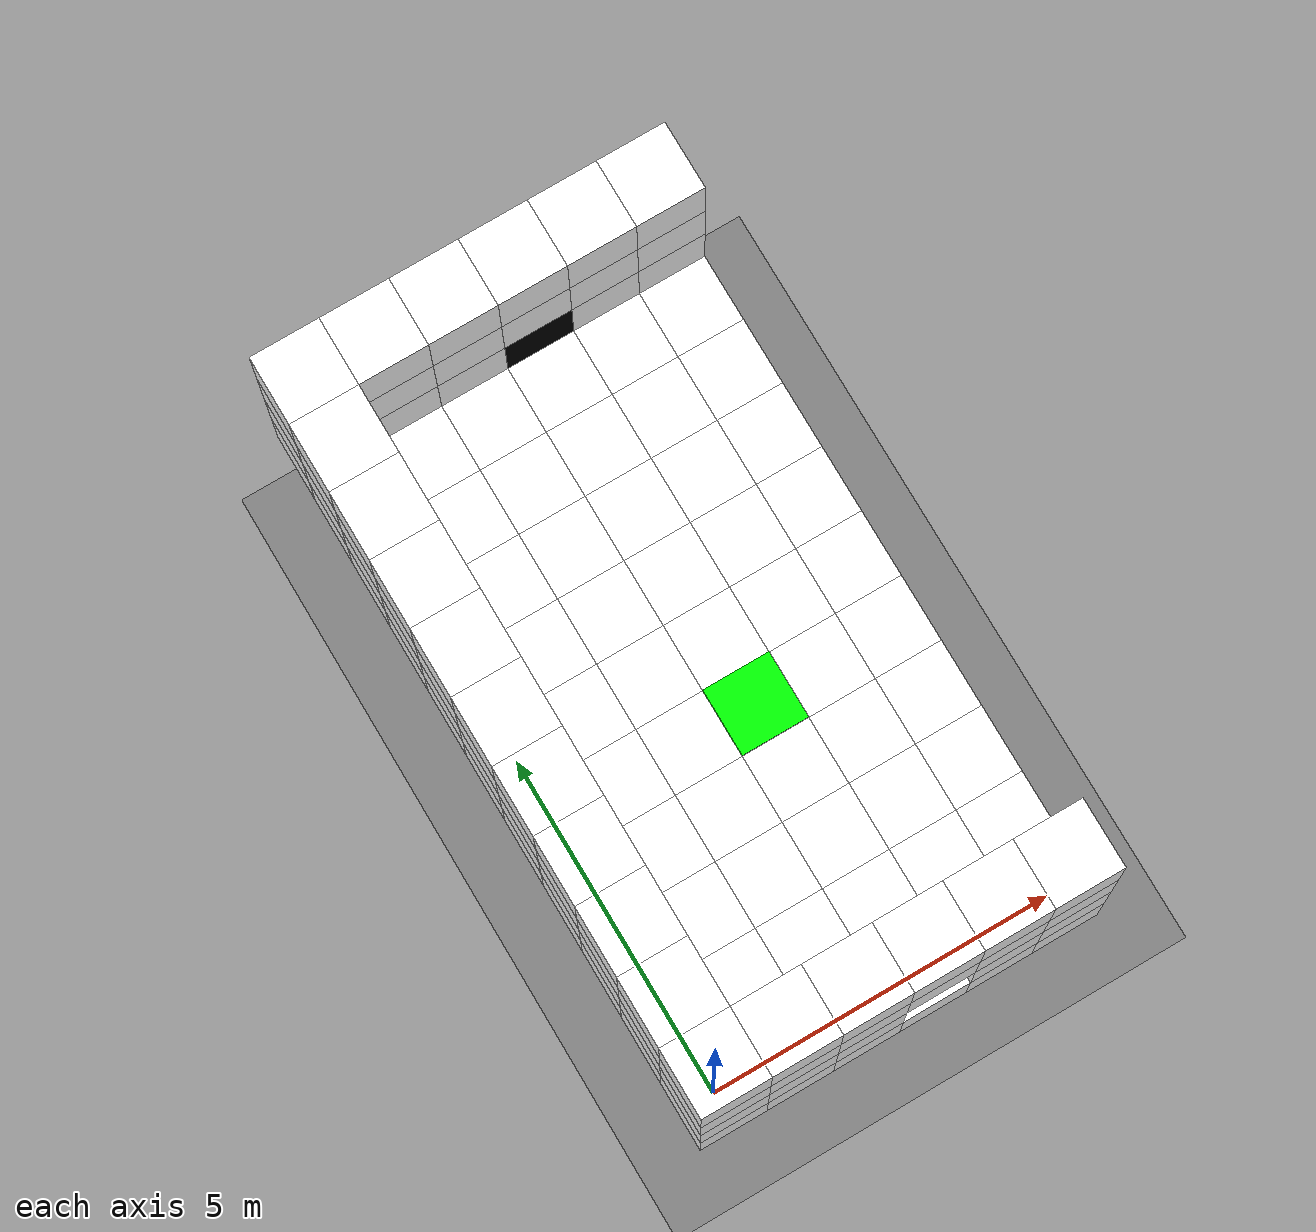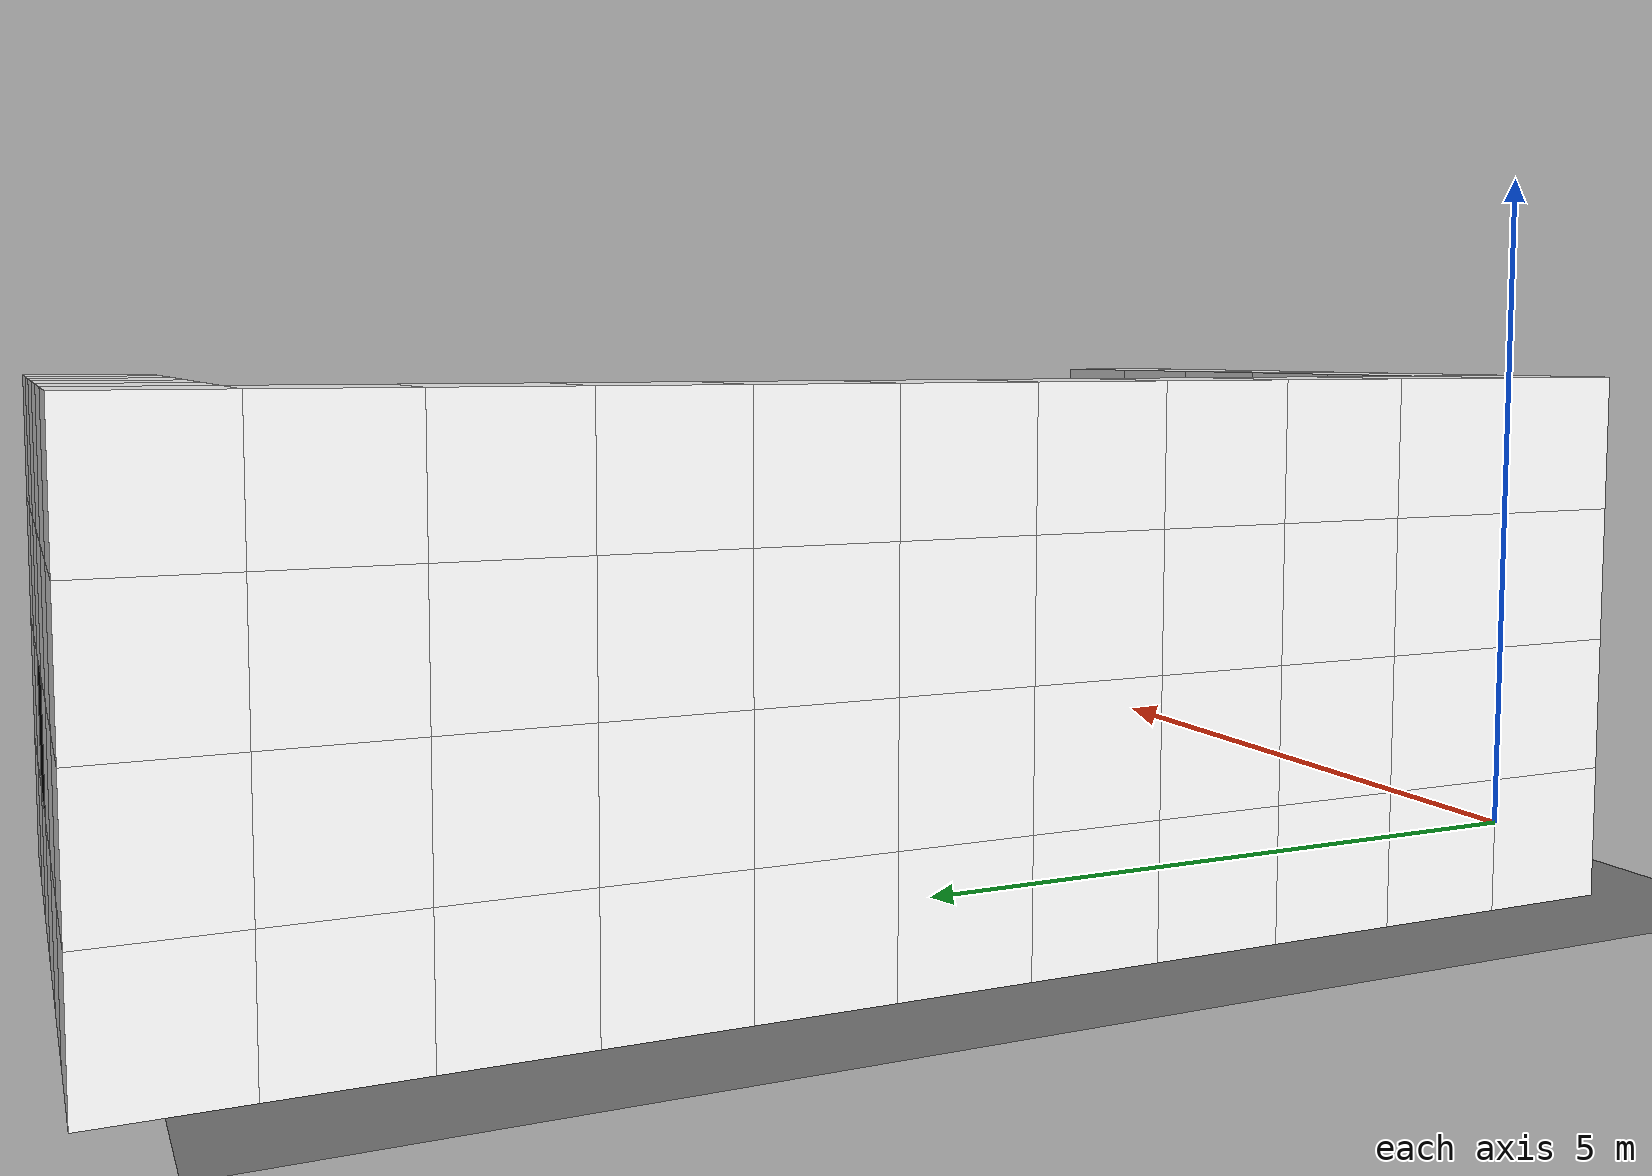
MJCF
<mujoco model="plane_field"><compiler angle="radian" coordinate="local" /><option gravity="0 0 0 " /><worldbody><geom type="plane" name="field" size="10 10 0.01" pos="0 0 -0.5" /><body name="room" pos="0 0 0"><body pos=" 3.0 4.0 0.52" euler=" 0.0 -0.0 0.0"><geom type="box" size=".5 .5 .02" pos="0 0 0" rgba="0 1 0 1" /></body><body pos=" 0.0 0.0 0.0" euler=" 0.0 -0.0 0.0"><geom type="box" size=".5 .5 .5" pos="0 0 0" rgba="1 1 1 1" /></body><body pos=" 0.0 1.0 0.0" euler=" 0.0 -0.0 0.0"><geom type="box" size=".5 .5 .5" pos="0 0 0" rgba="1 1 1 1" /></body><body pos=" 0.0 2.0 0.0" euler=" 0.0 -0.0 0.0"><geom type="box" size=".5 .5 .5" pos="0 0 0" rgba="1 1 1 1" /></body><body pos=" 0.0 3.0 0.0" euler=" 0.0 -0.0 0.0"><geom type="box" size=".5 .5 .5" pos="0 0 0" rgba="1 1 1 1" /></body><body pos=" 0.0 4.0 0.0" euler=" 0.0 -0.0 0.0"><geom type="box" size=".5 .5 .5" pos="0 0 0" rgba="1 1 1 1" /></body><body pos=" 0.0 5.0 0.0" euler=" 0.0 -0.0 0.0"><geom type="box" size=".5 .5 .5" pos="0 0 0" rgba="1 1 1 1" /></body><body pos=" 0.0 6.0 0.0" euler=" 0.0 -0.0 0.0"><geom type="box" size=".5 .5 .5" pos="0 0 0" rgba="1 1 1 1" /></body><body pos=" 0.0 7.0 0.0" euler=" 0.0 -0.0 0.0"><geom type="box" size=".5 .5 .5" pos="0 0 0" rgba="1 1 1 1" /></body><body pos=" 0.0 8.0 0.0" euler=" 0.0 -0.0 0.0"><geom type="box" size=".5 .5 .5" pos="0 0 0" rgba="1 1 1 1" /></body><body pos=" 0.0 9.0 0.0" euler=" 0.0 -0.0 0.0"><geom type="box" size=".5 .5 .5" pos="0 0 0" rgba="1 1 1 1" /></body><body pos=" 0.0 10.0 0.0" euler=" 0.0 -0.0 0.0"><geom type="box" size=".5 .5 .5" pos="0 0 0" rgba="1 1 1 1" /></body><body pos=" 1.0 0.0 0.0" euler=" 0.0 -0.0 0.0"><geom type="box" size=".5 .5 .5" pos="0 0 0" rgba="1 1 1 1" /></body><body pos=" 1.0 1.0 0.0" euler=" 0.0 -0.0 0.0"><geom type="box" size=".5 .5 .5" pos="0 0 0" rgba="1 1 1 1" /></body><body pos=" 1.0 2.0 0.0" euler=" 0.0 -0.0 0.0"><geom type="box" size=".5 .5 .5" pos="0 0 0" rgba="1 1 1 1" /></body><body pos=" 1.0 3.0 0.0" euler=" 0.0 -0.0 0.0"><geom type="box" size=".5 .5 .5" pos="0 0 0" rgba="1 1 1 1" /></body><body pos=" 1.0 4.0 0.0" euler=" 0.0 -0.0 0.0"><geom type="box" size=".5 .5 .5" pos="0 0 0" rgba="1 1 1 1" /></body><body pos=" 1.0 5.0 0.0" euler=" 0.0 -0.0 0.0"><geom type="box" size=".5 .5 .5" pos="0 0 0" rgba="1 1 1 1" /></body><body pos=" 1.0 6.0 0.0" euler=" 0.0 -0.0 0.0"><geom type="box" size=".5 .5 .5" pos="0 0 0" rgba="1 1 1 1" /></body><body pos=" 1.0 7.0 0.0" euler=" 0.0 -0.0 0.0"><geom type="box" size=".5 .5 .5" pos="0 0 0" rgba="1 1 1 1" /></body><body pos=" 1.0 8.0 0.0" euler=" 0.0 -0.0 0.0"><geom type="box" size=".5 .5 .5" pos="0 0 0" rgba="1 1 1 1" /></body><body pos=" 1.0 9.0 0.0" euler=" 0.0 -0.0 0.0"><geom type="box" size=".5 .5 .5" pos="0 0 0" rgba="1 1 1 1" /></body><body pos=" 1.0 10.0 0.0" euler=" 0.0 -0.0 0.0"><geom type="box" size=".5 .5 .5" pos="0 0 0" rgba="1 1 1 1" /></body><body pos=" 2.0 0.0 0.0" euler=" 0.0 -0.0 0.0"><geom type="box" size=".5 .5 .5" pos="0 0 0" rgba="1 1 1 1" /></body><body pos=" 2.0 1.0 0.0" euler=" 0.0 -0.0 0.0"><geom type="box" size=".5 .5 .5" pos="0 0 0" rgba="1 1 1 1" /></body><body pos=" 2.0 2.0 0.0" euler=" 0.0 -0.0 0.0"><geom type="box" size=".5 .5 .5" pos="0 0 0" rgba="1 1 1 1" /></body><body pos=" 2.0 3.0 0.0" euler=" 0.0 -0.0 0.0"><geom type="box" size=".5 .5 .5" pos="0 0 0" rgba="1 1 1 1" /></body><body pos=" 2.0 4.0 0.0" euler=" 0.0 -0.0 0.0"><geom type="box" size=".5 .5 .5" pos="0 0 0" rgba="1 1 1 1" /></body><body pos=" 2.0 5.0 0.0" euler=" 0.0 -0.0 0.0"><geom type="box" size=".5 .5 .5" pos="0 0 0" rgba="1 1 1 1" /></body><body pos=" 2.0 6.0 0.0" euler=" 0.0 -0.0 0.0"><geom type="box" size=".5 .5 .5" pos="0 0 0" rgba="1 1 1 1" /></body><body pos=" 2.0 7.0 0.0" euler=" 0.0 -0.0 0.0"><geom type="box" size=".5 .5 .5" pos="0 0 0" rgba="1 1 1 1" /></body><body pos=" 2.0 8.0 0.0" euler=" 0.0 -0.0 0.0"><geom type="box" size=".5 .5 .5" pos="0 0 0" rgba="1 1 1 1" /></body><body pos=" 2.0 9.0 0.0" euler=" 0.0 -0.0 0.0"><geom type="box" size=".5 .5 .5" pos="0 0 0" rgba="1 1 1 1" /></body><body pos=" 2.0 10.0 0.0" euler=" 0.0 -0.0 0.0"><geom type="box" size=".5 .5 .5" pos="0 0 0" rgba="1 1 1 1" /></body><body pos=" 3.0 0.0 0.0" euler=" 0.0 -0.0 0.0"><geom type="box" size=".5 .5 .5" pos="0 0 0" rgba="1 1 1 1" /></body><body pos=" 3.0 1.0 0.0" euler=" 0.0 -0.0 0.0"><geom type="box" size=".5 .5 .5" pos="0 0 0" rgba="1 1 1 1" /></body><body pos=" 3.0 2.0 0.0" euler=" 0.0 -0.0 0.0"><geom type="box" size=".5 .5 .5" pos="0 0 0" rgba="1 1 1 1" /></body><body pos=" 3.0 3.0 0.0" euler=" 0.0 -0.0 0.0"><geom type="box" size=".5 .5 .5" pos="0 0 0" rgba="1 1 1 1" /></body><body pos=" 3.0 4.0 0.0" euler=" 0.0 -0.0 0.0"><geom type="box" size=".5 .5 .5" pos="0 0 0" rgba="1 1 1 1" /></body><body pos=" 3.0 5.0 0.0" euler=" 0.0 -0.0 0.0"><geom type="box" size=".5 .5 .5" pos="0 0 0" rgba="1 1 1 1" /></body><body pos=" 3.0 6.0 0.0" euler=" 0.0 -0.0 0.0"><geom type="box" size=".5 .5 .5" pos="0 0 0" rgba="1 1 1 1" /></body><body pos=" 3.0 7.0 0.0" euler=" 0.0 -0.0 0.0"><geom type="box" size=".5 .5 .5" pos="0 0 0" rgba="1 1 1 1" /></body><body pos=" 3.0 8.0 0.0" euler=" 0.0 -0.0 0.0"><geom type="box" size=".5 .5 .5" pos="0 0 0" rgba="1 1 1 1" /></body><body pos=" 3.0 9.0 0.0" euler=" 0.0 -0.0 0.0"><geom type="box" size=".5 .5 .5" pos="0 0 0" rgba="1 1 1 1" /></body><body pos=" 3.0 10.0 0.0" euler=" 0.0 -0.0 0.0"><geom type="box" size=".5 .5 .5" pos="0 0 0" rgba="1 1 1 1" /></body><body pos=" 4.0 0.0 0.0" euler=" 0.0 -0.0 0.0"><geom type="box" size=".5 .5 .5" pos="0 0 0" rgba="1 1 1 1" /></body><body pos=" 4.0 1.0 0.0" euler=" 0.0 -0.0 0.0"><geom type="box" size=".5 .5 .5" pos="0 0 0" rgba="1 1 1 1" /></body><body pos=" 4.0 2.0 0.0" euler=" 0.0 -0.0 0.0"><geom type="box" size=".5 .5 .5" pos="0 0 0" rgba="1 1 1 1" /></body><body pos=" 4.0 3.0 0.0" euler=" 0.0 -0.0 0.0"><geom type="box" size=".5 .5 .5" pos="0 0 0" rgba="1 1 1 1" /></body><body pos=" 4.0 4.0 0.0" euler=" 0.0 -0.0 0.0"><geom type="box" size=".5 .5 .5" pos="0 0 0" rgba="1 1 1 1" /></body><body pos=" 4.0 5.0 0.0" euler=" 0.0 -0.0 0.0"><geom type="box" size=".5 .5 .5" pos="0 0 0" rgba="1 1 1 1" /></body><body pos=" 4.0 6.0 0.0" euler=" 0.0 -0.0 0.0"><geom type="box" size=".5 .5 .5" pos="0 0 0" rgba="1 1 1 1" /></body><body pos=" 4.0 7.0 0.0" euler=" 0.0 -0.0 0.0"><geom type="box" size=".5 .5 .5" pos="0 0 0" rgba="1 1 1 1" /></body><body pos=" 4.0 8.0 0.0" euler=" 0.0 -0.0 0.0"><geom type="box" size=".5 .5 .5" pos="0 0 0" rgba="1 1 1 1" /></body><body pos=" 4.0 9.0 0.0" euler=" 0.0 -0.0 0.0"><geom type="box" size=".5 .5 .5" pos="0 0 0" rgba="1 1 1 1" /></body><body pos=" 4.0 10.0 0.0" euler=" 0.0 -0.0 0.0"><geom type="box" size=".5 .5 .5" pos="0 0 0" rgba="1 1 1 1" /></body><body pos=" 5.0 0.0 0.0" euler=" 0.0 -0.0 0.0"><geom type="box" size=".5 .5 .5" pos="0 0 0" rgba="1 1 1 1" /></body><body pos=" 5.0 1.0 0.0" euler=" 0.0 -0.0 0.0"><geom type="box" size=".5 .5 .5" pos="0 0 0" rgba="1 1 1 1" /></body><body pos=" 5.0 2.0 0.0" euler=" 0.0 -0.0 0.0"><geom type="box" size=".5 .5 .5" pos="0 0 0" rgba="1 1 1 1" /></body><body pos=" 5.0 3.0 0.0" euler=" 0.0 -0.0 0.0"><geom type="box" size=".5 .5 .5" pos="0 0 0" rgba="1 1 1 1" /></body><body pos=" 5.0 4.0 0.0" euler=" 0.0 -0.0 0.0"><geom type="box" size=".5 .5 .5" pos="0 0 0" rgba="1 1 1 1" /></body><body pos=" 5.0 5.0 0.0" euler=" 0.0 -0.0 0.0"><geom type="box" size=".5 .5 .5" pos="0 0 0" rgba="1 1 1 1" /></body><body pos=" 5.0 6.0 0.0" euler=" 0.0 -0.0 0.0"><geom type="box" size=".5 .5 .5" pos="0 0 0" rgba="1 1 1 1" /></body><body pos=" 5.0 7.0 0.0" euler=" 0.0 -0.0 0.0"><geom type="box" size=".5 .5 .5" pos="0 0 0" rgba="1 1 1 1" /></body><body pos=" 5.0 8.0 0.0" euler=" 0.0 -0.0 0.0"><geom type="box" size=".5 .5 .5" pos="0 0 0" rgba="1 1 1 1" /></body><body pos=" 5.0 9.0 0.0" euler=" 0.0 -0.0 0.0"><geom type="box" size=".5 .5 .5" pos="0 0 0" rgba="1 1 1 1" /></body><body pos=" 5.0 10.0 0.0" euler=" 0.0 -0.0 0.0"><geom type="box" size=".5 .5 .5" pos="0 0 0" rgba="1 1 1 1" /></body><body pos=" 0.0 0.0 1.0" euler=" 0.0 -0.0 0.0"><geom type="box" size=".5 .5 .5" pos="0 0 0" rgba="1 1 1 1" /></body><body pos=" 0.0 0.0 2.0" euler=" 0.0 -0.0 0.0"><geom type="box" size=".5 .5 .5" pos="0 0 0" rgba="1 1 1 1" /></body><body pos=" 0.0 0.0 3.0" euler=" 0.0 -0.0 0.0"><geom type="box" size=".5 .5 .5" pos="0 0 0" rgba="1 1 1 1" /></body><body pos=" 0.0 1.0 1.0" euler=" 0.0 -0.0 0.0"><geom type="box" size=".5 .5 .5" pos="0 0 0" rgba="1 1 1 1" /></body><body pos=" 0.0 1.0 2.0" euler=" 0.0 -0.0 0.0"><geom type="box" size=".5 .5 .5" pos="0 0 0" rgba="1 1 1 1" /></body><body pos=" 0.0 1.0 3.0" euler=" 0.0 -0.0 0.0"><geom type="box" size=".5 .5 .5" pos="0 0 0" rgba="1 1 1 1" /></body><body pos=" 0.0 2.0 1.0" euler=" 0.0 -0.0 0.0"><geom type="box" size=".5 .5 .5" pos="0 0 0" rgba="1 1 1 1" /></body><body pos=" 0.0 2.0 2.0" euler=" 0.0 -0.0 0.0"><geom type="box" size=".5 .5 .5" pos="0 0 0" rgba="1 1 1 1" /></body><body pos=" 0.0 2.0 3.0" euler=" 0.0 -0.0 0.0"><geom type="box" size=".5 .5 .5" pos="0 0 0" rgba="1 1 1 1" /></body><body pos=" 0.0 3.0 1.0" euler=" 0.0 -0.0 0.0"><geom type="box" size=".5 .5 .5" pos="0 0 0" rgba="1 1 1 1" /></body><body pos=" 0.0 3.0 2.0" euler=" 0.0 -0.0 0.0"><geom type="box" size=".5 .5 .5" pos="0 0 0" rgba="1 1 1 1" /></body><body pos=" 0.0 3.0 3.0" euler=" 0.0 -0.0 0.0"><geom type="box" size=".5 .5 .5" pos="0 0 0" rgba="1 1 1 1" /></body><body pos=" 0.0 4.0 1.0" euler=" 0.0 -0.0 0.0"><geom type="box" size=".5 .5 .5" pos="0 0 0" rgba="1 1 1 1" /></body><body pos=" 0.0 4.0 2.0" euler=" 0.0 -0.0 0.0"><geom type="box" size=".5 .5 .5" pos="0 0 0" rgba="1 1 1 1" /></body><body pos=" 0.0 4.0 3.0" euler=" 0.0 -0.0 0.0"><geom type="box" size=".5 .5 .5" pos="0 0 0" rgba="1 1 1 1" /></body><body pos=" 0.0 5.0 1.0" euler=" 0.0 -0.0 0.0"><geom type="box" size=".5 .5 .5" pos="0 0 0" rgba="1 1 1 1" /></body><body pos=" 0.0 5.0 2.0" euler=" 0.0 -0.0 0.0"><geom type="box" size=".5 .5 .5" pos="0 0 0" rgba="1 1 1 1" /></body><body pos=" 0.0 5.0 3.0" euler=" 0.0 -0.0 0.0"><geom type="box" size=".5 .5 .5" pos="0 0 0" rgba="1 1 1 1" /></body><body pos=" 0.0 6.0 1.0" euler=" 0.0 -0.0 0.0"><geom type="box" size=".5 .5 .5" pos="0 0 0" rgba="1 1 1 1" /></body><body pos=" 0.0 6.0 2.0" euler=" 0.0 -0.0 0.0"><geom type="box" size=".5 .5 .5" pos="0 0 0" rgba="1 1 1 1" /></body><body pos=" 0.0 6.0 3.0" euler=" 0.0 -0.0 0.0"><geom type="box" size=".5 .5 .5" pos="0 0 0" rgba="1 1 1 1" /></body><body pos=" 0.0 7.0 1.0" euler=" 0.0 -0.0 0.0"><geom type="box" size=".5 .5 .5" pos="0 0 0" rgba="1 1 1 1" /></body><body pos=" 0.0 7.0 2.0" euler=" 0.0 -0.0 0.0"><geom type="box" size=".5 .5 .5" pos="0 0 0" rgba="1 1 1 1" /></body><body pos=" 0.0 7.0 3.0" euler=" 0.0 -0.0 0.0"><geom type="box" size=".5 .5 .5" pos="0 0 0" rgba="1 1 1 1" /></body><body pos=" 0.0 8.0 1.0" euler=" 0.0 -0.0 0.0"><geom type="box" size=".5 .5 .5" pos="0 0 0" rgba="1 1 1 1" /></body><body pos=" 0.0 8.0 2.0" euler=" 0.0 -0.0 0.0"><geom type="box" size=".5 .5 .5" pos="0 0 0" rgba="1 1 1 1" /></body><body pos=" 0.0 8.0 3.0" euler=" 0.0 -0.0 0.0"><geom type="box" size=".5 .5 .5" pos="0 0 0" rgba="1 1 1 1" /></body><body pos=" 0.0 9.0 1.0" euler=" 0.0 -0.0 0.0"><geom type="box" size=".5 .5 .5" pos="0 0 0" rgba="1 1 1 1" /></body><body pos=" 0.0 9.0 2.0" euler=" 0.0 -0.0 0.0"><geom type="box" size=".5 .5 .5" pos="0 0 0" rgba="1 1 1 1" /></body><body pos=" 0.0 9.0 3.0" euler=" 0.0 -0.0 0.0"><geom type="box" size=".5 .5 .5" pos="0 0 0" rgba="1 1 1 1" /></body><body pos=" 0.0 10.0 1.0" euler=" 0.0 -0.0 0.0"><geom type="box" size=".5 .5 .5" pos="0 0 0" rgba="1 1 1 1" /></body><body pos=" 0.0 10.0 2.0" euler=" 0.0 -0.0 0.0"><geom type="box" size=".5 .5 .5" pos="0 0 0" rgba="1 1 1 1" /></body><body pos=" 0.0 10.0 3.0" euler=" 0.0 -0.0 0.0"><geom type="box" size=".5 .5 .5" pos="0 0 0" rgba="1 1 1 1" /></body><body pos=" 1.0 0.0 1.0" euler=" 0.0 -0.0 0.0"><geom type="box" size=".5 .5 .5" pos="0 0 0" rgba="1 1 1 1" /></body><body pos=" 1.0 0.0 2.0" euler=" 0.0 -0.0 0.0"><geom type="box" size=".5 .5 .5" pos="0 0 0" rgba="1 1 1 1" /></body><body pos=" 1.0 0.0 3.0" euler=" 0.0 -0.0 0.0"><geom type="box" size=".5 .5 .5" pos="0 0 0" rgba="1 1 1 1" /></body><body pos=" 1.0 10.0 1.0" euler=" 0.0 -0.0 0.0"><geom type="box" size=".5 .5 .5" pos="0 0 0" rgba="1 1 1 1" /></body><body pos=" 1.0 10.0 2.0" euler=" 0.0 -0.0 0.0"><geom type="box" size=".5 .5 .5" pos="0 0 0" rgba="1 1 1 1" /></body><body pos=" 1.0 10.0 3.0" euler=" 0.0 -0.0 0.0"><geom type="box" size=".5 .5 .5" pos="0 0 0" rgba="1 1 1 1" /></body><body pos=" 2.0 0.0 1.0" euler=" 0.0 -0.0 0.0"><geom type="box" size=".5 .5 .5" pos="0 0 0" rgba="1 1 1 1" /></body><body pos=" 2.0 0.0 2.0" euler=" 0.0 -0.0 0.0"><geom type="box" size=".5 .5 .5" pos="0 0 0" rgba="1 1 1 1" /></body><body pos=" 2.0 0.0 3.0" euler=" 0.0 -0.0 0.0"><geom type="box" size=".5 .5 .5" pos="0 0 0" rgba="1 1 1 1" /></body><body pos=" 2.0 10.0 1.0" euler=" 0.0 -0.0 0.0"><geom type="box" size=".5 .5 .5" pos="0 0 0" rgba="1 1 1 1" /></body><body pos=" 2.0 10.0 2.0" euler=" 0.0 -0.0 0.0"><geom type="box" size=".5 .5 .5" pos="0 0 0" rgba="1 1 1 1" /></body><body pos=" 2.0 10.0 3.0" euler=" 0.0 -0.0 0.0"><geom type="box" size=".5 .5 .5" pos="0 0 0" rgba="1 1 1 1" /></body><body pos=" 3.0 0.0 2.0" euler=" 0.0 -0.0 0.0"><geom type="box" size=".5 .5 .5" pos="0 0 0" rgba="1 1 1 1" /></body><body pos=" 3.0 0.0 3.0" euler=" 0.0 -0.0 0.0"><geom type="box" size=".5 .5 .5" pos="0 0 0" rgba="1 1 1 1" /></body><body pos=" 3.0 10.0 2.0" euler=" 0.0 -0.0 0.0"><geom type="box" size=".5 .5 .5" pos="0 0 0" rgba="1 1 1 1" /></body><body pos=" 3.0 10.0 3.0" euler=" 0.0 -0.0 0.0"><geom type="box" size=".5 .5 .5" pos="0 0 0" rgba="1 1 1 1" /></body><body pos=" 4.0 0.0 1.0" euler=" 0.0 -0.0 0.0"><geom type="box" size=".5 .5 .5" pos="0 0 0" rgba="1 1 1 1" /></body><body pos=" 4.0 0.0 2.0" euler=" 0.0 -0.0 0.0"><geom type="box" size=".5 .5 .5" pos="0 0 0" rgba="1 1 1 1" /></body><body pos=" 4.0 0.0 3.0" euler=" 0.0 -0.0 0.0"><geom type="box" size=".5 .5 .5" pos="0 0 0" rgba="1 1 1 1" /></body><body pos=" 4.0 10.0 1.0" euler=" 0.0 -0.0 0.0"><geom type="box" size=".5 .5 .5" pos="0 0 0" rgba="1 1 1 1" /></body><body pos=" 4.0 10.0 2.0" euler=" 0.0 -0.0 0.0"><geom type="box" size=".5 .5 .5" pos="0 0 0" rgba="1 1 1 1" /></body><body pos=" 4.0 10.0 3.0" euler=" 0.0 -0.0 0.0"><geom type="box" size=".5 .5 .5" pos="0 0 0" rgba="1 1 1 1" /></body><body pos=" 5.0 0.0 1.0" euler=" 0.0 -0.0 0.0"><geom type="box" size=".5 .5 .5" pos="0 0 0" rgba="1 1 1 1" /></body><body pos=" 5.0 0.0 2.0" euler=" 0.0 -0.0 0.0"><geom type="box" size=".5 .5 .5" pos="0 0 0" rgba="1 1 1 1" /></body><body pos=" 5.0 0.0 3.0" euler=" 0.0 -0.0 0.0"><geom type="box" size=".5 .5 .5" pos="0 0 0" rgba="1 1 1 1" /></body><body pos=" 5.0 10.0 1.0" euler=" 0.0 -0.0 0.0"><geom type="box" size=".5 .5 .5" pos="0 0 0" rgba="1 1 1 1" /></body><body pos=" 5.0 10.0 2.0" euler=" 0.0 -0.0 0.0"><geom type="box" size=".5 .5 .5" pos="0 0 0" rgba="1 1 1 1" /></body><body pos=" 5.0 10.0 3.0" euler=" 0.0 -0.0 0.0"><geom type="box" size=".5 .5 .5" pos="0 0 0" rgba="1 1 1 1" /></body><body pos=" 3.0 10.0 1.0" euler=" 0.0 -0.0 0.0"><geom type="box" size=".5 .5 .5" pos="0 0 0" rgba="0 0 0 1" /></body></body></worldbody></mujoco>
